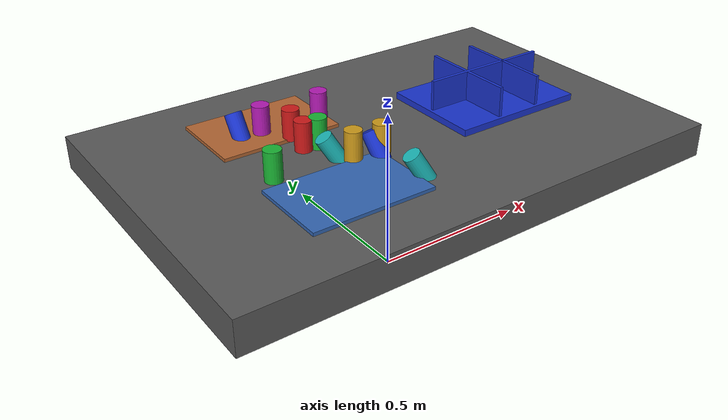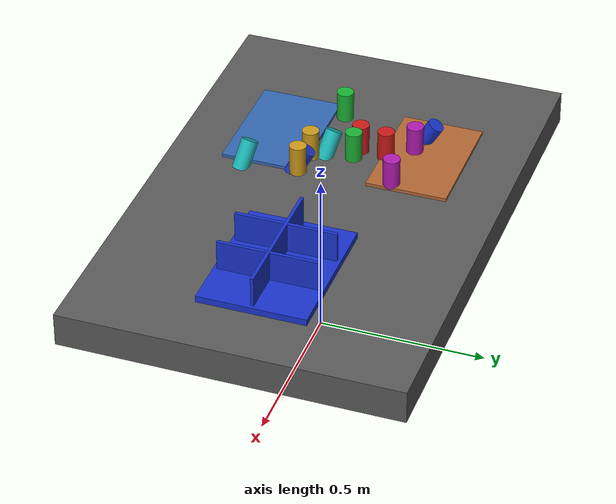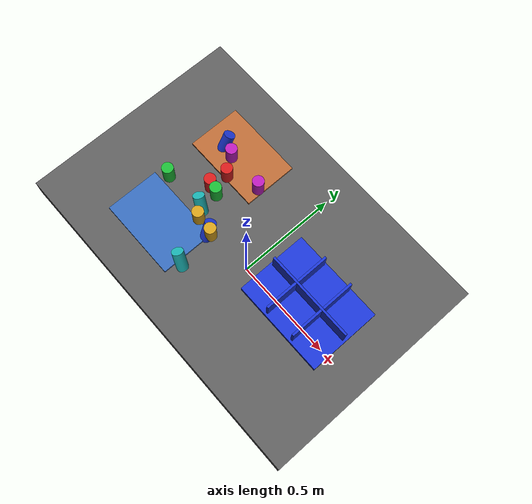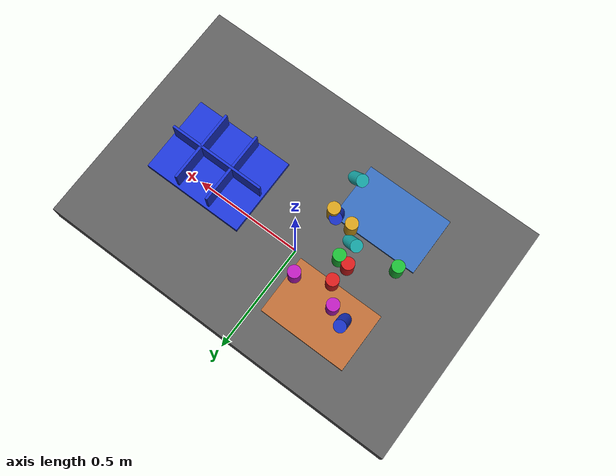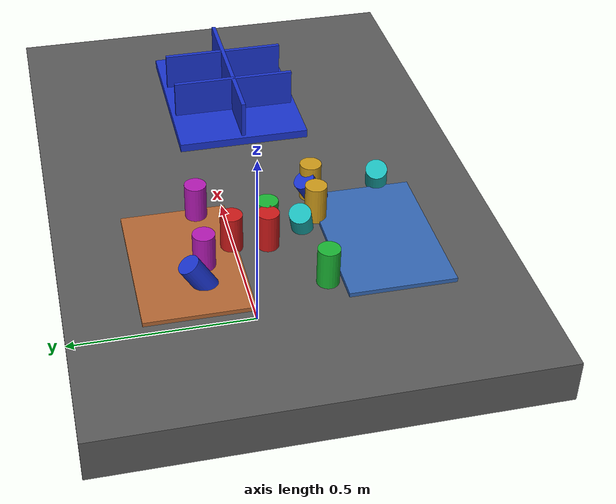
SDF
<?xml version="1.0" ?>
<sdf version="1.9">
  <!-- Standalone M1B scene.  The controller-backed Panda is spawned by the
       existing launch path; this file never alters the frozen M1A cube world. -->
  <world name="industrial_cylinder_v1">
    <physics name="bullet" type="bullet"><max_step_size>0.001</max_step_size><real_time_factor>1.0</real_time_factor></physics>
    <plugin name="gz::sim::systems::Physics" filename="gz-sim-physics-system"><engine><filename>gz-physics-bullet-featherstone-plugin</filename></engine></plugin>
    <plugin name="gz::sim::systems::UserCommands" filename="gz-sim-user-commands-system"/>
    <plugin name="gz::sim::systems::SceneBroadcaster" filename="gz-sim-scene-broadcaster-system"/>
    <plugin name="gz::sim::systems::Sensors" filename="gz-sim-sensors-system"><render_engine>ogre2</render_engine></plugin>
    <gravity>0 0 -9.81</gravity>
    <light type="directional" name="industrial_light"><pose>0 0 5 0 0 0</pose><direction>-0.3 0.2 -0.9</direction><diffuse>0.9 0.9 0.9 1</diffuse></light>
    <model name="industrial_work_table"><static>true</static><link name="link"><pose>0 0 0.4 0 0 0</pose><collision name="collision"><geometry><box><size>1.5 1.0 0.1</size></box></geometry></collision><visual name="visual"><geometry><box><size>1.5 1.0 0.1</size></box></geometry><material><diffuse>0.35 0.35 0.35 1</diffuse></material></visual></link></model>
    <model name="camera_fixture"><static>true</static><link name="camera_rgbd"><pose>-0.80 -0.80 1.40 0 0.77 0.93</pose><sensor name="front_rgbd" type="rgbd_camera"><always_on>1</always_on><update_rate>15</update_rate><topic>/xh/camera/rgbd</topic><camera><horizontal_fov>1.047</horizontal_fov><image><width>640</width><height>480</height><format>R8G8B8</format></image><clip><near>0.1</near><far>4.0</far></clip></camera></sensor></link></model>
    <model name="incoming_zone_a"><static>true</static><link name="link"><pose>-0.28 -0.22 0.455 0 0 0</pose><visual name="visual"><geometry><box><size>0.36 0.24 0.01</size></box></geometry><material><diffuse>0.2 0.4 0.7 1</diffuse></material></visual></link></model>
    <model name="incoming_zone_b"><static>true</static><link name="link"><pose>-0.28 0.22 0.455 0 0 0</pose><visual name="visual"><geometry><box><size>0.36 0.24 0.01</size></box></geometry><material><diffuse>0.7 0.4 0.2 1</diffuse></material></visual></link></model>
    <!-- M1B_RANDOM_PARTS_BEGIN -->
    <model name="cylinder_01"><pose>-0.2576 0.0313 0.5000 0.0000 0.0000 2.9362</pose><link name="link"><inertial><mass>0.06</mass></inertial><collision name="collision"><geometry><cylinder><radius>0.025</radius><length>0.09</length></cylinder></geometry></collision><visual name="visual"><geometry><cylinder><radius>0.025</radius><length>0.09</length></cylinder></geometry><material><diffuse>0.800 0.100 0.100 1</diffuse><specular>0.15 0.15 0.15 1</specular></material></visual></link></model>
    <model name="cylinder_02"><pose>-0.4061 -0.0669 0.5000 3.1416 0.0000 -0.7062</pose><link name="link"><inertial><mass>0.06</mass></inertial><collision name="collision"><geometry><cylinder><radius>0.025</radius><length>0.09</length></cylinder></geometry></collision><visual name="visual"><geometry><cylinder><radius>0.025</radius><length>0.09</length></cylinder></geometry><material><diffuse>0.100 0.700 0.200 1</diffuse><specular>0.15 0.15 0.15 1</specular></material></visual></link></model>
    <model name="cylinder_03"><pose>-0.1136 -0.1045 0.4800 0.4500 -0.3000 -2.2946</pose><link name="link"><inertial><mass>0.06</mass></inertial><collision name="collision"><geometry><cylinder><radius>0.025</radius><length>0.09</length></cylinder></geometry></collision><visual name="visual"><geometry><cylinder><radius>0.025</radius><length>0.09</length></cylinder></geometry><material><diffuse>0.100 0.200 0.800 1</diffuse><specular>0.15 0.15 0.15 1</specular></material></visual></link></model>
    <model name="cylinder_04"><pose>-0.0966 -0.1044 0.5000 0.0000 0.0000 0.2133</pose><link name="link"><inertial><mass>0.06</mass></inertial><collision name="collision"><geometry><cylinder><radius>0.025</radius><length>0.09</length></cylinder></geometry></collision><visual name="visual"><geometry><cylinder><radius>0.025</radius><length>0.09</length></cylinder></geometry><material><diffuse>0.800 0.600 0.100 1</diffuse><specular>0.15 0.15 0.15 1</specular></material></visual></link></model>
    <model name="cylinder_05"><pose>-0.3019 0.1823 0.5000 3.1416 0.0000 1.9487</pose><link name="link"><inertial><mass>0.06</mass></inertial><collision name="collision"><geometry><cylinder><radius>0.025</radius><length>0.09</length></cylinder></geometry></collision><visual name="visual"><geometry><cylinder><radius>0.025</radius><length>0.09</length></cylinder></geometry><material><diffuse>0.700 0.100 0.700 1</diffuse><specular>0.15 0.15 0.15 1</specular></material></visual></link></model>
    <model name="cylinder_06"><pose>-0.0932 -0.2654 0.4800 0.4500 -0.3000 -1.3744</pose><link name="link"><inertial><mass>0.06</mass></inertial><collision name="collision"><geometry><cylinder><radius>0.025</radius><length>0.09</length></cylinder></geometry></collision><visual name="visual"><geometry><cylinder><radius>0.025</radius><length>0.09</length></cylinder></geometry><material><diffuse>0.100 0.700 0.700 1</diffuse><specular>0.15 0.15 0.15 1</specular></material></visual></link></model>
    <model name="cylinder_07"><pose>-0.2480 0.1115 0.5000 0.0000 0.0000 -1.7352</pose><link name="link"><inertial><mass>0.06</mass></inertial><collision name="collision"><geometry><cylinder><radius>0.025</radius><length>0.09</length></cylinder></geometry></collision><visual name="visual"><geometry><cylinder><radius>0.025</radius><length>0.09</length></cylinder></geometry><material><diffuse>0.800 0.100 0.100 1</diffuse><specular>0.15 0.15 0.15 1</specular></material></visual></link></model>
    <model name="cylinder_08"><pose>-0.2147 0.0242 0.5000 3.1416 0.0000 1.1422</pose><link name="link"><inertial><mass>0.06</mass></inertial><collision name="collision"><geometry><cylinder><radius>0.025</radius><length>0.09</length></cylinder></geometry></collision><visual name="visual"><geometry><cylinder><radius>0.025</radius><length>0.09</length></cylinder></geometry><material><diffuse>0.100 0.700 0.200 1</diffuse><specular>0.15 0.15 0.15 1</specular></material></visual></link></model>
    <model name="cylinder_09"><pose>-0.3630 0.2035 0.4800 0.4500 -0.3000 -2.5352</pose><link name="link"><inertial><mass>0.06</mass></inertial><collision name="collision"><geometry><cylinder><radius>0.025</radius><length>0.09</length></cylinder></geometry></collision><visual name="visual"><geometry><cylinder><radius>0.025</radius><length>0.09</length></cylinder></geometry><material><diffuse>0.100 0.200 0.800 1</diffuse><specular>0.15 0.15 0.15 1</specular></material></visual></link></model>
    <model name="cylinder_10"><pose>-0.1818 -0.0959 0.5000 0.0000 0.0000 -2.9654</pose><link name="link"><inertial><mass>0.06</mass></inertial><collision name="collision"><geometry><cylinder><radius>0.025</radius><length>0.09</length></cylinder></geometry></collision><visual name="visual"><geometry><cylinder><radius>0.025</radius><length>0.09</length></cylinder></geometry><material><diffuse>0.800 0.600 0.100 1</diffuse><specular>0.15 0.15 0.15 1</specular></material></visual></link></model>
    <model name="cylinder_11"><pose>-0.1221 0.1694 0.5000 3.1416 0.0000 -1.2225</pose><link name="link"><inertial><mass>0.06</mass></inertial><collision name="collision"><geometry><cylinder><radius>0.025</radius><length>0.09</length></cylinder></geometry></collision><visual name="visual"><geometry><cylinder><radius>0.025</radius><length>0.09</length></cylinder></geometry><material><diffuse>0.700 0.100 0.700 1</diffuse><specular>0.15 0.15 0.15 1</specular></material></visual></link></model>
    <model name="cylinder_12"><pose>-0.2207 -0.0533 0.4800 0.4500 -0.3000 -1.4304</pose><link name="link"><inertial><mass>0.06</mass></inertial><collision name="collision"><geometry><cylinder><radius>0.025</radius><length>0.09</length></cylinder></geometry></collision><visual name="visual"><geometry><cylinder><radius>0.025</radius><length>0.09</length></cylinder></geometry><material><diffuse>0.100 0.700 0.700 1</diffuse><specular>0.15 0.15 0.15 1</specular></material></visual></link></model>
    <!-- M1B_RANDOM_PARTS_END -->
    <model name="blue_partition_bin"><static>true</static><pose>0.36 0 0.45 0 0 0</pose><link name="link"><collision name="floor"><pose>0 0 0.01 0 0 0</pose><geometry><box><size>0.42 0.32 0.02</size></box></geometry></collision><visual name="floor_visual"><pose>0 0 0.01 0 0 0</pose><geometry><box><size>0.42 0.32 0.02</size></box></geometry><material><diffuse>0.1 0.2 0.8 1</diffuse></material></visual><visual name="row_divider"><pose>0 0 0.06 0 0 0</pose><geometry><box><size>0.40 0.01 0.10</size></box></geometry><material><diffuse>0.1 0.2 0.8 1</diffuse></material></visual><visual name="col_divider_a"><pose>-0.07 0 0.06 0 0 0</pose><geometry><box><size>0.01 0.30 0.10</size></box></geometry><material><diffuse>0.1 0.2 0.8 1</diffuse></material></visual><visual name="col_divider_b"><pose>0.07 0 0.06 0 0 0</pose><geometry><box><size>0.01 0.30 0.10</size></box></geometry><material><diffuse>0.1 0.2 0.8 1</diffuse></material></visual></link></model>
    <!-- Reserved only: second table, bin transport corridor, stackable-bin
         collision volume, and second arm mounting namespace. -->
  </world>
</sdf>
